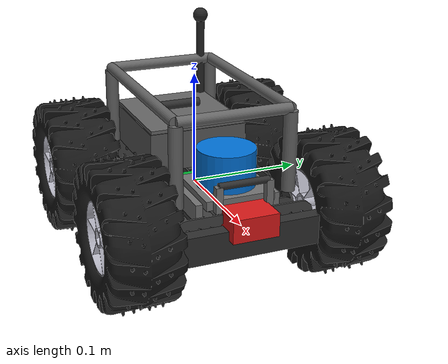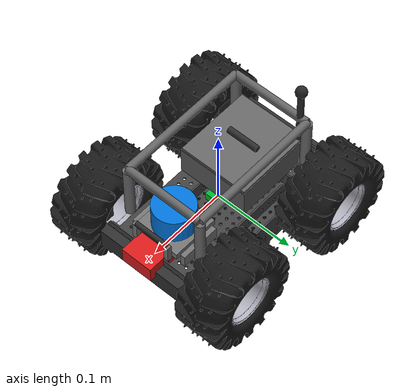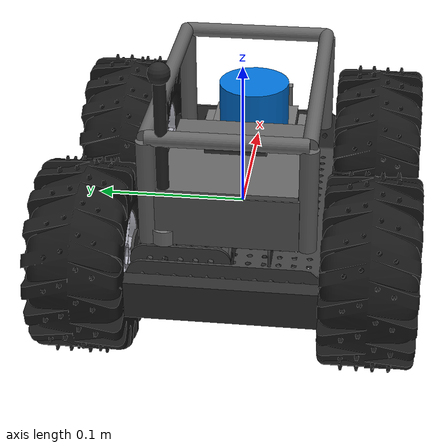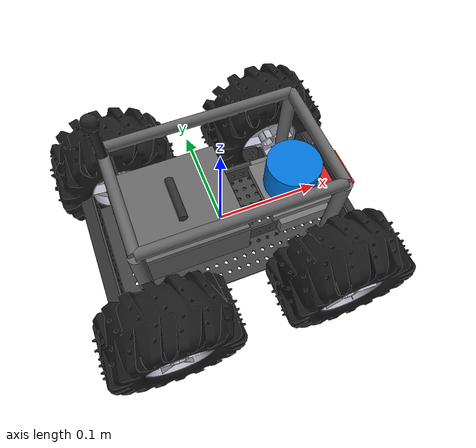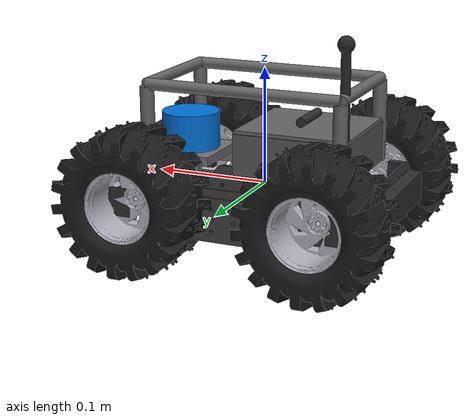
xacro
<?xml version="1.0"?>

<robot name="scouting_rover" xmlns:xacro="http://www.ros.org/wiki/xacro">

  <!-- ═══════════════════════════════════════════════════
       MATERIALS
  ═══════════════════════════════════════════════════ -->
  <material name="chassis_gray">  <color rgba="0.25 0.25 0.25 1.0"/> </material>
  <material name="wheel_black">   <color rgba="0.10 0.10 0.10 1.0"/> </material>
  <material name="rim_silver">    <color rgba="0.70 0.70 0.75 1.0"/> </material>
  <material name="lidar_blue">    <color rgba="0.00 0.45 0.85 1.0"/> </material>
  <material name="camera_red">    <color rgba="0.85 0.10 0.10 1.0"/> </material>
  <material name="imu_green">     <color rgba="0.00 0.70 0.20 1.0"/> </material>

  <link name="base_link">

    <inertial>
      <origin xyz="0 0 0" rpy="0 0 0"/>
      <mass value="5.5"/>
      <inertia ixx="0.007130" ixy="0.000000" ixz="0.000000"
                               iyy="0.022714" iyz="0.000000"
                                              izz="0.028783"/>
    </inertial>

    <!-- Visual 1: Top chassis plate -->
    <visual>
      <origin xyz="-0.1102 -0.0600 -0.0170" rpy="0 0 0"/>
      <geometry>
        <mesh filename="package://rover_description/meshes/top_chasis_4WD_r.stl"
              scale="0.001 0.001 0.001"/>
      </geometry>
      <material name="chassis_gray"/>
    </visual>

    <!-- Visual 2: Sub-chassis 1 (left lower frame)
         NOTE: XYZ is APPROXIMATE — fine-tune after viewing in RViz
         Logic: centered in X, below top chassis, offset to left (+Y) -->
    <visual>
      <origin xyz="-0.0700 0.0000 -0.0365" rpy="0 0 0"/>
      <geometry>
        <mesh filename="package://rover_description/meshes/small_chasis_1_r.stl"
              scale="0.001 0.001 0.001"/>
      </geometry>
      <material name="chassis_gray"/>
    </visual>

    <!-- Visual 3: Sub-chassis 2 (right lower frame)
         NOTE: XYZ is APPROXIMATE — fine-tune after viewing in RViz -->
    <visual>
      <origin xyz="-0.0600 -0.0250 -0.0370" rpy="0 0 0"/>
      <geometry>
        <mesh filename="package://rover_description/meshes/small_chasis_2_r.stl"
              scale="0.001 0.001 0.001"/>
      </geometry>
      <material name="chassis_gray"/>
    </visual>

    <!-- Collision: single bounding box for physics stability -->
    <collision>
      <origin xyz="0 0 0" rpy="0 0 0"/>
      <geometry>
        <box size="0.220 0.180 0.040"/>
      </geometry>
    </collision>

  </link>

  <!-- ──────────── FRONT LEFT WHEEL ──────────── -->
  <link name="front_left_wheel">
    <inertial>
      <origin xyz="0 0 0" rpy="0 0 0"/>
      <mass value="0.5"/>
      <inertia ixx="0.000646" ixy="0.0" ixz="0.0"
                               iyy="0.000646" iyz="0.0"
                                              izz="0.000992"/>
    </inertial>
    <visual>
      <origin xyz="-0.063 -0.031 0.063" rpy="-1.5708 0 0"/>
      <geometry>
        <mesh filename="package://rover_description/meshes/Tire_r.stl"
              scale="0.001 0.001 0.001"/>
      </geometry>
      <material name="wheel_black"/>
    </visual>
    <visual>
      <origin xyz="-0.030 -0.025 0.030" rpy="-1.5708 0 0"/>
      <geometry>
        <mesh filename="package://rover_description/meshes/tire_rim_r.stl"
              scale="0.001 0.001 0.001"/>
      </geometry>
      <material name="rim_silver"/>
    </visual>
    <collision>
      <origin xyz="0 0 0" rpy="1.5708 0 0"/>
      <geometry>
        <cylinder radius="0.063" length="0.060"/>
      </geometry>
    </collision>
  </link>

  <joint name="front_left_wheel_joint" type="continuous">
    <parent link="base_link"/>
    <child link="front_left_wheel"/>
    <origin xyz="0.080 0.090 0.0" rpy="0 0 0"/>
    <axis xyz="0 1 0"/>
    <dynamics damping="0.5" friction="0.5"/>
    <limit effort="30.0" velocity="20.0"/>
  </joint>

  <!-- ──────────── FRONT RIGHT WHEEL ──────────── -->
  <link name="front_right_wheel">
    <inertial>
      <origin xyz="0 0 0" rpy="0 0 0"/>
      <mass value="0.5"/>
      <inertia ixx="0.000646" ixy="0.0" ixz="0.0"
                               iyy="0.000646" iyz="0.0"
                                              izz="0.000992"/>
    </inertial>
    <visual>
      <origin xyz="-0.063 -0.031 0.063" rpy="-1.5708 0 0"/>
      <geometry>
        <mesh filename="package://rover_description/meshes/Tire_r.stl"
              scale="0.001 0.001 0.001"/>
      </geometry>
      <material name="wheel_black"/>
    </visual>
    <visual>
      <origin xyz="-0.030 -0.025 0.030" rpy="-1.5708 0 0"/>
      <geometry>
        <mesh filename="package://rover_description/meshes/tire_rim_r.stl"
              scale="0.001 0.001 0.001"/>
      </geometry>
      <material name="rim_silver"/>
    </visual>
    <collision>
      <origin xyz="0 0 0" rpy="1.5708 0 0"/>
      <geometry>
        <cylinder radius="0.063" length="0.060"/>
      </geometry>
    </collision>
  </link>

  <joint name="front_right_wheel_joint" type="continuous">
    <parent link="base_link"/>
    <child link="front_right_wheel"/>
    <origin xyz="0.080 -0.090 0.0" rpy="0 0 0"/>
    <axis xyz="0 1 0"/>
    <dynamics damping="0.5" friction="0.5"/>
    <limit effort="30.0" velocity="20.0"/>
  </joint>

  <!-- ──────────── REAR LEFT WHEEL ──────────── -->
  <link name="rear_left_wheel">
    <inertial>
      <origin xyz="0 0 0" rpy="0 0 0"/>
      <mass value="0.5"/>
      <inertia ixx="0.000646" ixy="0.0" ixz="0.0"
                               iyy="0.000646" iyz="0.0"
                                              izz="0.000992"/>
    </inertial>
    <visual>
      <origin xyz="-0.063 -0.031 0.063" rpy="-1.5708 0 0"/>
      <geometry>
        <mesh filename="package://rover_description/meshes/Tire_r.stl"
              scale="0.001 0.001 0.001"/>
      </geometry>
      <material name="wheel_black"/>
    </visual>
    <visual>
      <origin xyz="-0.030 -0.025 0.030" rpy="-1.5708 0 0"/>
      <geometry>
        <mesh filename="package://rover_description/meshes/tire_rim_r.stl"
              scale="0.001 0.001 0.001"/>
      </geometry>
      <material name="rim_silver"/>
    </visual>
    <collision>
      <origin xyz="0 0 0" rpy="1.5708 0 0"/>
      <geometry>
        <cylinder radius="0.063" length="0.060"/>
      </geometry>
    </collision>
  </link>

  <joint name="rear_left_wheel_joint" type="continuous">
    <parent link="base_link"/>
    <child link="rear_left_wheel"/>
    <origin xyz="-0.080 0.090 0.0" rpy="0 0 0"/>
    <axis xyz="0 1 0"/>
    <dynamics damping="0.5" friction="0.5"/>
    <limit effort="30.0" velocity="20.0"/>
  </joint>

  <!-- ──────────── REAR RIGHT WHEEL ──────────── -->
  <link name="rear_right_wheel">
    <inertial>
      <origin xyz="0 0 0" rpy="0 0 0"/>
      <mass value="0.5"/>
      <inertia ixx="0.000646" ixy="0.0" ixz="0.0"
                               iyy="0.000646" iyz="0.0"
                                              izz="0.000992"/>
    </inertial>
    <visual>
      <origin xyz="-0.063 -0.031 0.063" rpy="-1.5708 0 0"/>
      <geometry>
        <mesh filename="package://rover_description/meshes/Tire_r.stl"
              scale="0.001 0.001 0.001"/>
      </geometry>
      <material name="wheel_black"/>
    </visual>
    <visual>
      <origin xyz="-0.030 -0.025 0.030" rpy="-1.5708 0 0"/>
      <geometry>
        <mesh filename="package://rover_description/meshes/tire_rim_r.stl"
              scale="0.001 0.001 0.001"/>
      </geometry>
      <material name="rim_silver"/>
    </visual>
    <collision>
      <origin xyz="0 0 0" rpy="1.5708 0 0"/>
      <geometry>
        <cylinder radius="0.063" length="0.060"/>
      </geometry>
    </collision>
  </link>

  <joint name="rear_right_wheel_joint" type="continuous">
    <parent link="base_link"/>
    <child link="rear_right_wheel"/>
    <origin xyz="-0.080 -0.090 0.0" rpy="0 0 0"/>
    <axis xyz="0 1 0"/>
    <dynamics damping="0.5" friction="0.5"/>
    <limit effort="30.0" velocity="20.0"/>
  </joint>

  <!-- ═══════════════════════════════════════════════════
       SENSOR LINKS + JOINTS
  ═══════════════════════════════════════════════════ -->

  <link name="lidar_link">
    <inertial>
      <origin xyz="0 0 0" rpy="0 0 0"/>
      <mass value="0.2"/>
      <inertia ixx="0.0000579" ixy="0.0" ixz="0.0"
                                iyy="0.0000579" iyz="0.0"
                                               izz="0.0000625"/>
    </inertial>
    <visual>
      <origin xyz="0 0 0" rpy="0 0 0"/>
      <geometry>
        <cylinder radius="0.025" length="0.040"/>
      </geometry>
      <material name="lidar_blue"/>
    </visual>
    <collision>
      <origin xyz="0 0 0" rpy="0 0 0"/>
      <geometry>
        <cylinder radius="0.025" length="0.040"/>
      </geometry>
    </collision>
  </link>

  <joint name="lidar_joint" type="fixed">
    <parent link="base_link"/>
    <child link="lidar_link"/>
    <origin xyz="0.070 0.0 0.037" rpy="0 0 0"/>
  </joint>

  <link name="camera_link">
    <inertial>
      <origin xyz="0 0 0" rpy="0 0 0"/>
      <mass value="0.1"/>
      <inertia ixx="0.0000167" ixy="0.0" ixz="0.0"
                                iyy="0.0000167" iyz="0.0"
                                               izz="0.0000267"/>
    </inertial>
    <visual>
      <origin xyz="0 0 0" rpy="0 0 0"/>
      <geometry>
        <box size="0.040 0.040 0.020"/>
      </geometry>
      <material name="camera_red"/>
    </visual>
    <collision>
      <origin xyz="0 0 0" rpy="0 0 0"/>
      <geometry>
        <box size="0.040 0.040 0.020"/>
      </geometry>
    </collision>
  </link>

  <joint name="camera_joint" type="fixed">
    <parent link="base_link"/>
    <child link="camera_link"/>
    <origin xyz="0.110 0.0 0.010" rpy="0 0 0"/>
  </joint>

  <!-- Camera optical frame
       ROS image convention: Z=forward, X=right, Y=down
       Rotate -90deg around X, then -90deg around Z -->
  <link name="camera_optical_frame"/>

  <joint name="camera_optical_joint" type="fixed">
    <parent link="camera_link"/>
    <child link="camera_optical_frame"/>
    <origin xyz="0 0 0" rpy="-1.5708 0 -1.5708"/>
  </joint>

  <!-- ──────────── IMU ────────────
       Embedded at CoM (coincides with base_link origin)
       Tiny box, mass already absorbed into base_link inertial
  ──────────────────────────────── -->
  <link name="imu_link">
    <inertial>
      <origin xyz="0 0 0" rpy="0 0 0"/>
      <mass value="0.05"/>
      <inertia ixx="0.0000010" ixy="0.0" ixz="0.0"
                                iyy="0.0000010" iyz="0.0"
                                               izz="0.0000010"/>
    </inertial>
    <visual>
      <origin xyz="0 0 0" rpy="0 0 0"/>
      <geometry>
        <box size="0.020 0.020 0.010"/>
      </geometry>
      <material name="imu_green"/>
    </visual>
  </link>

  <joint name="imu_joint" type="fixed">
    <parent link="base_link"/>
    <child link="imu_link"/>
    <origin xyz="0.0 0.0 0.0" rpy="0 0 0"/>
  </joint>

  <!-- ═══════════════════════════════════════════════════
       FANCY PARTS
  ═══════════════════════════════════════════════════ -->

  <!-- Extra materials -->
  <material name="rollcage_gray">  <color rgba="0.40 0.40 0.40 1.0"/> </material>
  <material name="bumper_dark">    <color rgba="0.18 0.18 0.18 1.0"/> </material>
  <material name="payload_gray">   <color rgba="0.35 0.35 0.35 1.0"/> </material>
  <material name="mount_gray">     <color rgba="0.45 0.45 0.45 1.0"/> </material>
  <material name="antenna_dark">   <color rgba="0.15 0.15 0.15 1.0"/> </material>

  <link name="front_bumper_link">
    <inertial>
      <origin xyz="0 0 0" rpy="0 0 0"/>
      <mass value="0.15"/>
      <inertia ixx="0.0000500" ixy="0.0" ixz="0.0"
                                iyy="0.0000500" iyz="0.0"
                                               izz="0.0000500"/>
    </inertial>
    <!-- Main horizontal bar -->
    <visual>
      <origin xyz="0 0 0" rpy="0 0 0"/>
      <geometry>
        <box size="0.012 0.200 0.025"/>
      </geometry>
      <material name="bumper_dark"/>
    </visual>
    <!-- Left bracket arm -->
    <visual>
      <origin xyz="-0.015 0.080 0" rpy="0 0 0"/>
      <geometry>
        <box size="0.030 0.008 0.025"/>
      </geometry>
      <material name="bumper_dark"/>
    </visual>
    <!-- Right bracket arm -->
    <visual>
      <origin xyz="-0.015 -0.080 0" rpy="0 0 0"/>
      <geometry>
        <box size="0.030 0.008 0.025"/>
      </geometry>
      <material name="bumper_dark"/>
    </visual>
    <collision>
      <origin xyz="0 0 0" rpy="0 0 0"/>
      <geometry>
        <box size="0.012 0.200 0.025"/>
      </geometry>
    </collision>
  </link>

  <joint name="front_bumper_joint" type="fixed">
    <parent link="base_link"/>
    <child link="front_bumper_link"/>
    <origin xyz="0.116 0.0 -0.005" rpy="0 0 0"/>
  </joint>

  <!-- ──────────── REAR BUMPER GUARD ────────────
       Mirror of front bumper at rear of chassis
  ──────────────────────────────────────────────── -->
  <link name="rear_bumper_link">
    <inertial>
      <origin xyz="0 0 0" rpy="0 0 0"/>
      <mass value="0.15"/>
      <inertia ixx="0.0000500" ixy="0.0" ixz="0.0"
                                iyy="0.0000500" iyz="0.0"
                                               izz="0.0000500"/>
    </inertial>
    <visual>
      <origin xyz="0 0 0" rpy="0 0 0"/>
      <geometry>
        <box size="0.012 0.200 0.025"/>
      </geometry>
      <material name="bumper_dark"/>
    </visual>
    <!-- Left bracket arm -->
    <visual>
      <origin xyz="0.015 0.080 0" rpy="0 0 0"/>
      <geometry>
        <box size="0.030 0.008 0.025"/>
      </geometry>
      <material name="bumper_dark"/>
    </visual>
    <!-- Right bracket arm -->
    <visual>
      <origin xyz="0.015 -0.080 0" rpy="0 0 0"/>
      <geometry>
        <box size="0.030 0.008 0.025"/>
      </geometry>
      <material name="bumper_dark"/>
    </visual>
    <collision>
      <origin xyz="0 0 0" rpy="0 0 0"/>
      <geometry>
        <box size="0.012 0.200 0.025"/>
      </geometry>
    </collision>
  </link>

  <joint name="rear_bumper_joint" type="fixed">
    <parent link="base_link"/>
    <child link="rear_bumper_link"/>
    <origin xyz="-0.116 0.0 -0.005" rpy="0 0 0"/>
  </joint>

  <link name="rollcage_link">
    <inertial>
      <origin xyz="0 0 0" rpy="0 0 0"/>
      <mass value="0.30"/>
      <inertia ixx="0.0001000" ixy="0.0" ixz="0.0"
                                iyy="0.0001000" iyz="0.0"
                                               izz="0.0001000"/>
    </inertial>

    <!-- Front-Left post -->
    <visual>
      <origin xyz=" 0.085  0.050 0.035" rpy="0 0 0"/>
      <geometry><cylinder radius="0.006" length="0.070"/></geometry>
      <material name="rollcage_gray"/>
    </visual>
    <!-- Front-Right post -->
    <visual>
      <origin xyz=" 0.085 -0.050 0.035" rpy="0 0 0"/>
      <geometry><cylinder radius="0.006" length="0.070"/></geometry>
      <material name="rollcage_gray"/>
    </visual>
    <!-- Rear-Left post -->
    <visual>
      <origin xyz="-0.085  0.050 0.035" rpy="0 0 0"/>
      <geometry><cylinder radius="0.006" length="0.070"/></geometry>
      <material name="rollcage_gray"/>
    </visual>
    <!-- Rear-Right post -->
    <visual>
      <origin xyz="-0.085 -0.050 0.035" rpy="0 0 0"/>
      <geometry><cylinder radius="0.006" length="0.070"/></geometry>
      <material name="rollcage_gray"/>
    </visual>

    <!-- Left side rail -->
    <visual>
      <origin xyz="0.0  0.050 0.072" rpy="0 1.5708 0"/>
      <geometry><cylinder radius="0.005" length="0.170"/></geometry>
      <material name="rollcage_gray"/>
    </visual>
    <!-- Right side rail -->
    <visual>
      <origin xyz="0.0 -0.050 0.072" rpy="0 1.5708 0"/>
      <geometry><cylinder radius="0.005" length="0.170"/></geometry>
      <material name="rollcage_gray"/>
    </visual>

    <!-- Front cross bar -->
    <visual>
      <origin xyz=" 0.085 0.0 0.072" rpy="1.5708 0 0"/>
      <geometry><cylinder radius="0.005" length="0.100"/></geometry>
      <material name="rollcage_gray"/>
    </visual>
    <!-- Rear cross bar -->
    <visual>
      <origin xyz="-0.085 0.0 0.072" rpy="1.5708 0 0"/>
      <geometry><cylinder radius="0.005" length="0.100"/></geometry>
      <material name="rollcage_gray"/>
    </visual>

    <collision>
      <origin xyz="0.0 0.0 0.040" rpy="0 0 0"/>
      <geometry>
        <box size="0.170 0.100 0.080"/>
      </geometry>
    </collision>

  </link>

  <joint name="rollcage_joint" type="fixed">
    <parent link="base_link"/>
    <child link="rollcage_link"/>
    <origin xyz="0.0 0.0 0.017" rpy="0 0 0"/>
  </joint>

  <!-- ──────────── PAYLOAD BAY ────────────
       Cargo box mounted center-rear on chassis top
       Box: 0.100(X) × 0.090(Y) × 0.035(Z)
  ──────────────────────────────────────────────── -->
  <link name="payload_bay_link">
    <inertial>
      <origin xyz="0 0 0" rpy="0 0 0"/>
      <mass value="0.20"/>
      <inertia ixx="0.0000500" ixy="0.0" ixz="0.0"
                                iyy="0.0000500" iyz="0.0"
                                               izz="0.0000500"/>
    </inertial>
    <!-- Main box body -->
    <visual>
      <origin xyz="0 0 0" rpy="0 0 0"/>
      <geometry>
        <box size="0.100 0.090 0.035"/>
      </geometry>
      <material name="payload_gray"/>
    </visual>
    <!-- Lid line detail (thin flat box on top) -->
    <visual>
      <origin xyz="0 0 0.019" rpy="0 0 0"/>
      <geometry>
        <box size="0.098 0.088 0.003"/>
      </geometry>
      <material name="rollcage_gray"/>
    </visual>
    <!-- Handle bar on lid -->
    <visual>
      <origin xyz="0 0 0.026" rpy="1.5708 0 0"/>
      <geometry>
        <cylinder radius="0.004" length="0.040"/>
      </geometry>
      <material name="bumper_dark"/>
    </visual>
    <collision>
      <origin xyz="0 0 0" rpy="0 0 0"/>
      <geometry>
        <box size="0.100 0.090 0.035"/>
      </geometry>
    </collision>
  </link>

  <joint name="payload_bay_joint" type="fixed">
    <parent link="base_link"/>
    <child link="payload_bay_link"/>
    <!-- Centered in Y, rear half of chassis, sitting on top -->
    <origin xyz="-0.040 0.0 0.035" rpy="0 0 0"/>
  </joint>

  <!-- ──────────── LIDAR SENSOR MOUNT ────────────
       Bracket platform under LiDAR
       Box base + 2 side support tabs
  ──────────────────────────────────────────────── -->
  <link name="lidar_mount_link">
    <inertial>
      <origin xyz="0 0 0" rpy="0 0 0"/>
      <mass value="0.05"/>
      <inertia ixx="0.0000050" ixy="0.0" ixz="0.0"
                                iyy="0.0000050" iyz="0.0"
                                               izz="0.0000050"/>
    </inertial>
    <!-- Mounting plate -->
    <visual>
      <origin xyz="0 0 0" rpy="0 0 0"/>
      <geometry>
        <box size="0.060 0.060 0.008"/>
      </geometry>
      <material name="mount_gray"/>
    </visual>
    <!-- Left support tab -->
    <visual>
      <origin xyz="0 0.034 -0.008" rpy="0 0 0"/>
      <geometry>
        <box size="0.050 0.006 0.016"/>
      </geometry>
      <material name="mount_gray"/>
    </visual>
    <!-- Right support tab -->
    <visual>
      <origin xyz="0 -0.034 -0.008" rpy="0 0 0"/>
      <geometry>
        <box size="0.050 0.006 0.016"/>
      </geometry>
      <material name="mount_gray"/>
    </visual>
  </link>

  <joint name="lidar_mount_joint" type="fixed">
    <parent link="base_link"/>
    <child link="lidar_mount_link"/>
    <!-- Sits just below lidar_link -->
    <origin xyz="0.070 0.0 0.021" rpy="0 0 0"/>
  </joint>

  <!-- ──────────── CAMERA GIMBAL MOUNT ────────────
       2-axis gimbal bracket: base plate + tilt arm + camera holder
  ──────────────────────────────────────────────── -->
  <link name="camera_gimbal_link">
    <inertial>
      <origin xyz="0 0 0" rpy="0 0 0"/>
      <mass value="0.05"/>
      <inertia ixx="0.0000050" ixy="0.0" ixz="0.0"
                                iyy="0.0000050" iyz="0.0"
                                               izz="0.0000050"/>
    </inertial>
    <!-- Base plate -->
    <visual>
      <origin xyz="0 0 0" rpy="0 0 0"/>
      <geometry>
        <box size="0.030 0.045 0.006"/>
      </geometry>
      <material name="mount_gray"/>
    </visual>
    <!-- Left tilt arm -->
    <visual>
      <origin xyz="0.010 0.022 0.014" rpy="0 0 0"/>
      <geometry>
        <box size="0.006 0.006 0.022"/>
      </geometry>
      <material name="mount_gray"/>
    </visual>
    <!-- Right tilt arm -->
    <visual>
      <origin xyz="0.010 -0.022 0.014" rpy="0 0 0"/>
      <geometry>
        <box size="0.006 0.006 0.022"/>
      </geometry>
      <material name="mount_gray"/>
    </visual>
    <!-- Horizontal pivot rod -->
    <visual>
      <origin xyz="0.010 0 0.025" rpy="1.5708 0 0"/>
      <geometry>
        <cylinder radius="0.003" length="0.044"/>
      </geometry>
      <material name="bumper_dark"/>
    </visual>
  </link>

  <joint name="camera_gimbal_joint" type="fixed">
    <parent link="base_link"/>
    <child link="camera_gimbal_link"/>
    <origin xyz="0.095 0.0 0.014" rpy="0 0 0"/>
  </joint>

  <!-- ──────────── ANTENNA ────────────
       Thin rod with small ball tip, mounted rear-left of chassis
  ──────────────────────────────────────────────── -->
  <link name="antenna_link">
    <inertial>
      <origin xyz="0 0 0" rpy="0 0 0"/>
      <mass value="0.02"/>
      <inertia ixx="0.0000010" ixy="0.0" ixz="0.0"
                                iyy="0.0000010" iyz="0.0"
                                               izz="0.0000010"/>
    </inertial>
    <!-- Antenna rod -->
    <visual>
      <origin xyz="0 0 0.055" rpy="0 0 0"/>
      <geometry>
        <cylinder radius="0.004" length="0.110"/>
      </geometry>
      <material name="antenna_dark"/>
    </visual>
    <!-- Ball tip -->
    <visual>
      <origin xyz="0 0 0.115" rpy="0 0 0"/>
      <geometry>
        <sphere radius="0.007"/>
      </geometry>
      <material name="antenna_dark"/>
    </visual>
    <!-- Base mount collar -->
    <visual>
      <origin xyz="0 0 0.005" rpy="0 0 0"/>
      <geometry>
        <cylinder radius="0.008" length="0.010"/>
      </geometry>
      <material name="mount_gray"/>
    </visual>
  </link>

  <joint name="antenna_joint" type="fixed">
    <parent link="base_link"/>
    <child link="antenna_link"/>
    <!-- Rear-left corner, on top of chassis -->
    <origin xyz="-0.085 0.040 0.017" rpy="0 0 0"/>
  </joint>

  <xacro:include filename="$(find rover_description)/urdf/rover_gazebo_fortress.xacro"/>

</robot>
